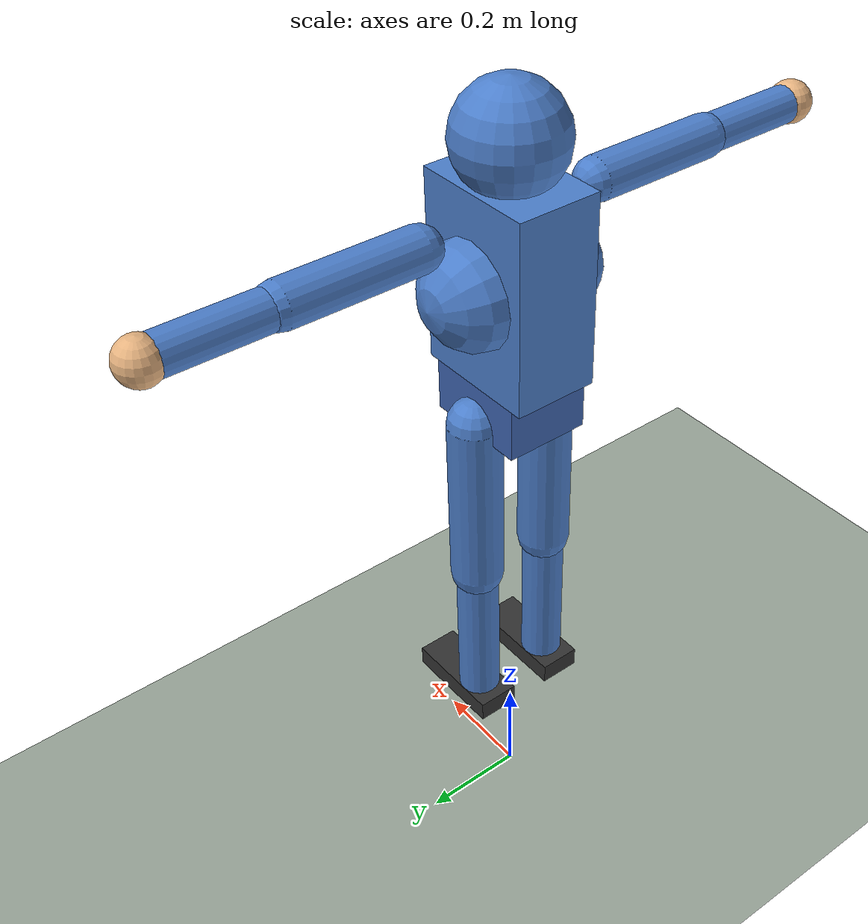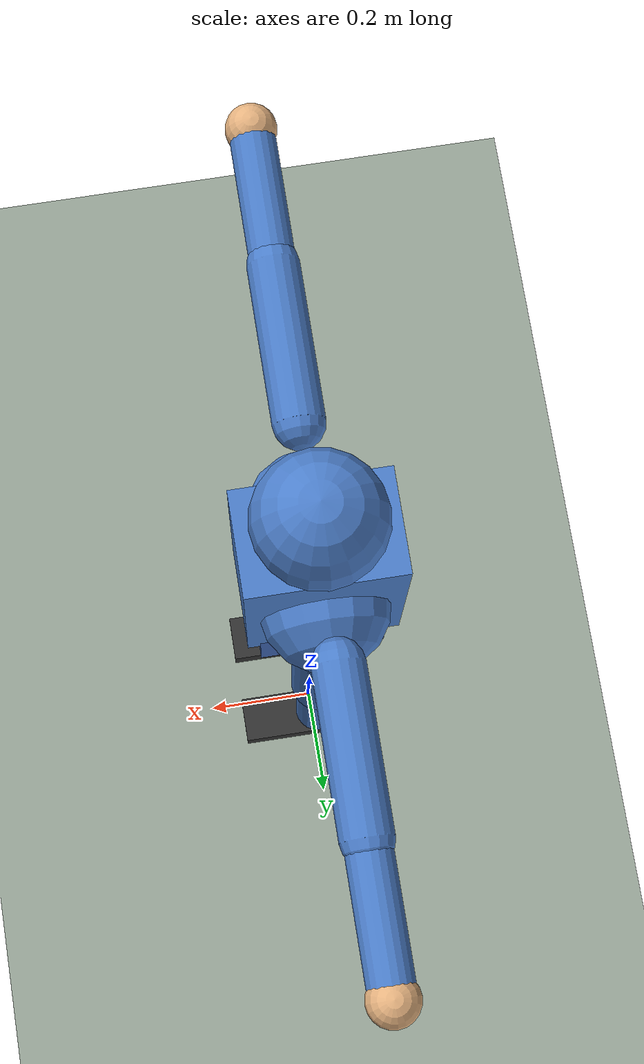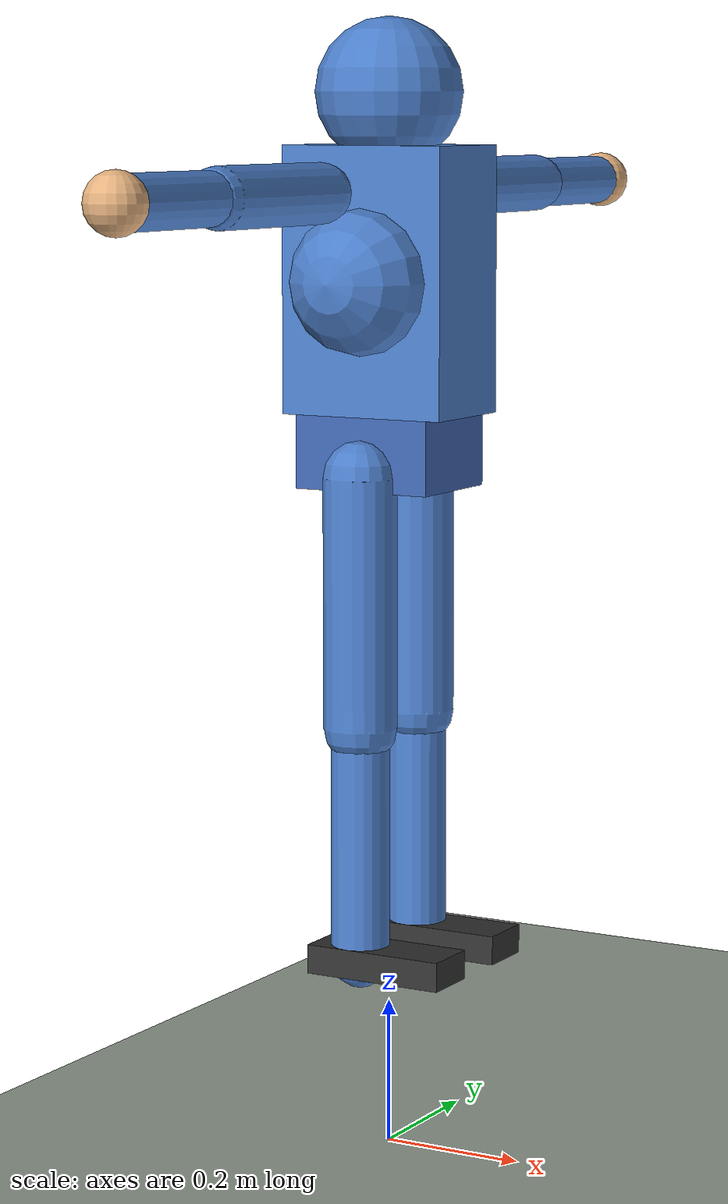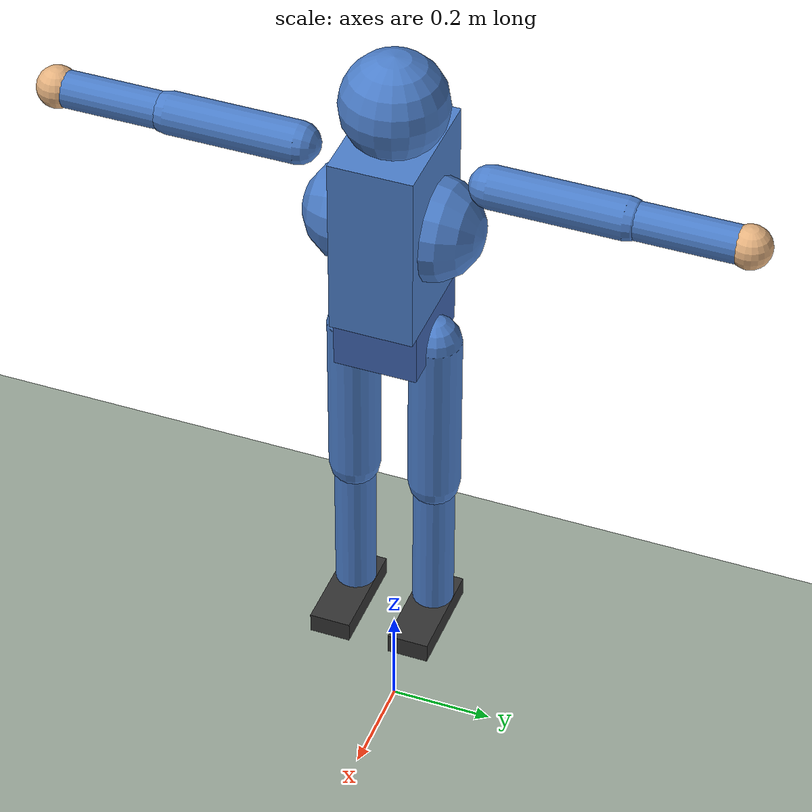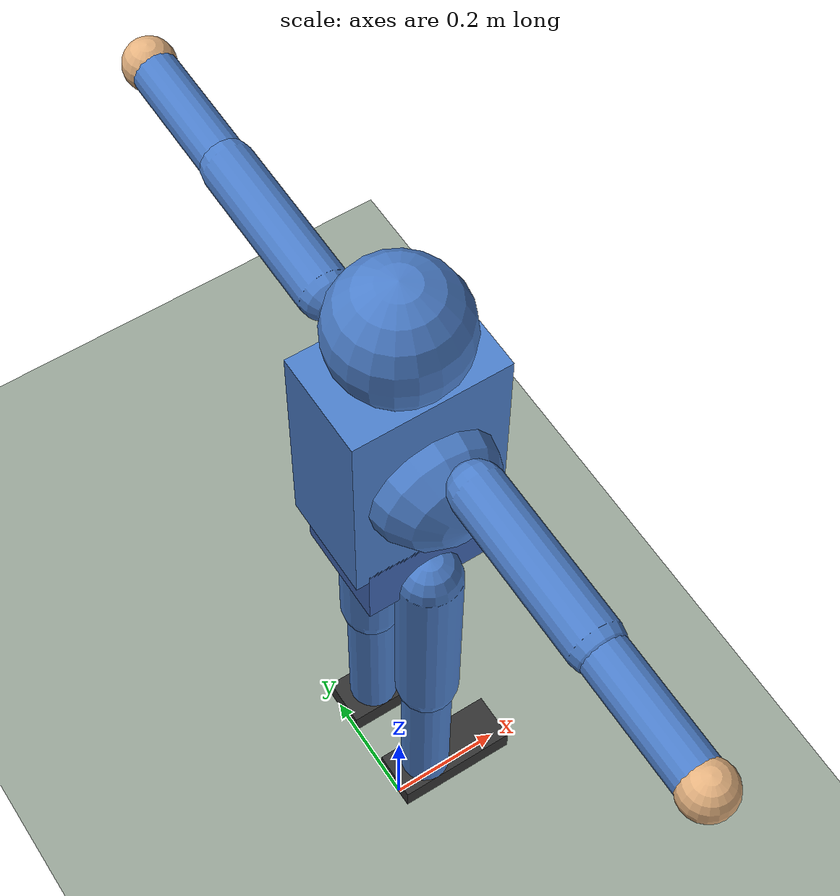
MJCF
<mujoco model="simple_humanoid">
  <compiler angle="radian"/>

  <default>
    <joint damping="2" armature="0.01"/>
    <geom condim="1" margin="0.001" material="body_mat" type="capsule"/>
    <motor ctrllimited="true" ctrlrange="-1 1"/>
  </default>

  <asset>
    <material name="body_mat" rgba="0.3 0.5 0.8 1"/>
    <material name="joint_mat" rgba="0.8 0.3 0.2 1"/>
    <material name="hand_mat" rgba="0.9 0.7 0.5 1"/>
    <material name="foot_mat" rgba="0.2 0.2 0.2 1"/>
  </asset>

  <worldbody>
    <!-- Ground -->
    <geom type="plane" size="5 5 0.1" rgba="0.6 0.65 0.6 1"/>

    <body name="torso" pos="0 0 1.2">
      <!-- Torso -->
      <geom name="torso_geom" fromto="0 -0.07 0 0 0.07 0" size="0.1" material="body_mat"/>
      <geom name="chest" type="box" size="0.12 0.08 0.18" pos="0 0 0" rgba="0.3 0.5 0.8 1"/>

      <!-- Head -->
      <body name="head" pos="0 0 0.25">
        <joint name="neck" type="hinge" axis="0 1 0" range="-0.5 0.5"/>
        <geom name="head_geom" type="sphere" size="0.1" material="body_mat"/>
      </body>

      <!-- Right upper arm -->
      <body name="right_upper_arm" pos="0 -0.18 0.12">
        <joint name="right_shoulder_x" type="hinge" axis="1 0 0" range="-1.57 1.57"/>
        <joint name="right_shoulder_z" type="hinge" axis="0 0 1" range="-1.57 0.5"/>
        <geom name="right_upper_arm_geom" fromto="0 0 0 0 -0.25 0" size="0.04" material="body_mat"/>

        <!-- Right forearm -->
        <body name="right_forearm" pos="0 -0.25 0">
          <joint name="right_elbow" type="hinge" axis="1 0 0" range="-2.35 0"/>
          <geom name="right_forearm_geom" fromto="0 0 0 0 -0.22 0" size="0.035" material="body_mat"/>

          <!-- Right hand -->
          <body name="right_hand" pos="0 -0.22 0">
            <geom name="right_hand_geom" type="sphere" size="0.04" material="hand_mat"/>
          </body>
        </body>
      </body>

      <!-- Left upper arm -->
      <body name="left_upper_arm" pos="0 0.18 0.12">
        <joint name="left_shoulder_x" type="hinge" axis="1 0 0" range="-1.57 1.57"/>
        <joint name="left_shoulder_z" type="hinge" axis="0 0 1" range="-0.5 1.57"/>
        <geom name="left_upper_arm_geom" fromto="0 0 0 0 0.25 0" size="0.04" material="body_mat"/>

        <!-- Left forearm -->
        <body name="left_forearm" pos="0 0.25 0">
          <joint name="left_elbow" type="hinge" axis="1 0 0" range="-2.35 0"/>
          <geom name="left_forearm_geom" fromto="0 0 0 0 0.22 0" size="0.035" material="body_mat"/>

          <!-- Left hand -->
          <body name="left_hand" pos="0 0.22 0">
            <geom name="left_hand_geom" type="sphere" size="0.04" material="hand_mat"/>
          </body>
        </body>
      </body>

      <!-- Pelvis -->
      <body name="pelvis" pos="0 0 -0.22">
        <joint name="hip_bend" type="hinge" axis="0 1 0" range="-0.5 0.5"/>
        <geom name="pelvis_geom" type="box" size="0.1 0.08 0.06" rgba="0.25 0.4 0.7 1"/>

        <!-- Right thigh -->
        <body name="right_thigh" pos="0 -0.08 -0.04">
          <joint name="right_hip_x" type="hinge" axis="1 0 0" range="-0.4 1.2"/>
          <joint name="right_hip_z" type="hinge" axis="0 0 1" range="-0.5 0.5"/>
          <geom name="right_thigh_geom" fromto="0 0 0 0 0 -0.34" size="0.05" material="body_mat"/>

          <!-- Right shin -->
          <body name="right_shin" pos="0 0 -0.34">
            <joint name="right_knee" type="hinge" axis="0 1 0" range="-2.35 0"/>
            <geom name="right_shin_geom" fromto="0 0 0 0 0 -0.32" size="0.04" material="body_mat"/>

            <!-- Right foot -->
            <body name="right_foot" pos="0 0 -0.32">
              <joint name="right_ankle" type="hinge" axis="0 1 0" range="-0.6 0.6"/>
              <geom name="right_foot_geom" type="box" size="0.1 0.04 0.02" pos="0.04 0 0" material="foot_mat"/>
            </body>
          </body>
        </body>

        <!-- Left thigh -->
        <body name="left_thigh" pos="0 0.08 -0.04">
          <joint name="left_hip_x" type="hinge" axis="1 0 0" range="-0.4 1.2"/>
          <joint name="left_hip_z" type="hinge" axis="0 0 1" range="-0.5 0.5"/>
          <geom name="left_thigh_geom" fromto="0 0 0 0 0 -0.34" size="0.05" material="body_mat"/>

          <!-- Left shin -->
          <body name="left_shin" pos="0 0 -0.34">
            <joint name="left_knee" type="hinge" axis="0 1 0" range="-2.35 0"/>
            <geom name="left_shin_geom" fromto="0 0 0 0 0 -0.32" size="0.04" material="body_mat"/>

            <!-- Left foot -->
            <body name="left_foot" pos="0 0 -0.32">
              <joint name="left_ankle" type="hinge" axis="0 1 0" range="-0.6 0.6"/>
              <geom name="left_foot_geom" type="box" size="0.1 0.04 0.02" pos="0.04 0 0" material="foot_mat"/>
            </body>
          </body>
        </body>
      </body>
    </body>
  </worldbody>
</mujoco>
